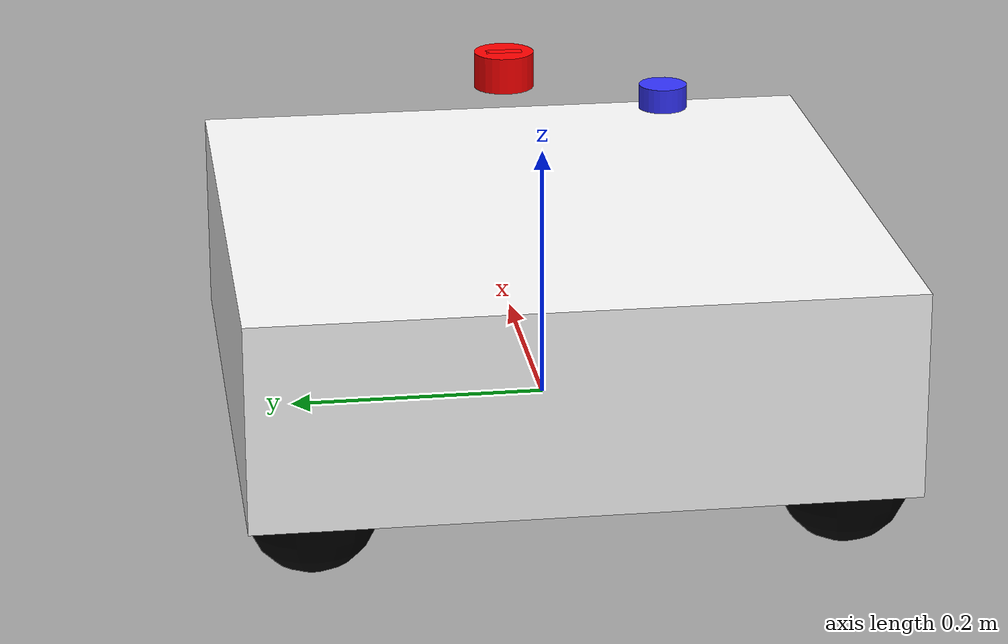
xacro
<?xml version="1.0"?>
<robot xmlns:xacro="http://www.ros.org/wiki/xacro"  name="actual_robot_rect_obj">
    <xacro:arg name="prefix" default="" />

    <xacro:include filename="actual_robot_rect_obj_core_corr.xacro"/>
    <xacro:include filename="actual_lidar_corr_rect_obj.xacro"/>
    <xacro:include filename="actual_camera_corr_rect_obj.xacro"/>
    <xacro:include filename="actual_depth_camera_corr_rect_obj.xacro"/>
    <xacro:include filename="actual_imu_corr_rect_obj.xacro"/>

    <xacro:rect_obj prefix=""/>
    <xacro:lidar_module prefix=""/>
    <xacro:camera_module prefix=""/>
    <xacro:depth_camera_module prefix=""/>
    <xacro:imu_module prefix=""/>
</robot>

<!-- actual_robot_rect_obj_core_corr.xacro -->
<robot xmlns:xacro="http://www.ros.org/wiki/xacro"  >

    <xacro:macro name="rect_obj" params="prefix">

    <xacro:include filename="inertial_macros.xacro"/>

    <material name="white">
        <color rgba="1 1 1 1" />
    </material>

    <material name="orange">
        <color rgba="1 0.3 0.1 1" />
    </material>

    <material name="blue">
        <color rgba="0.2 0.2 1 1" />
    </material>

    <material name="red">
        <color rgba="1 0 0 1" />
    </material>

    <material name="black">
        <color rgba="0 0 0 1" />
    </material>

    <!-- Base link:  center of rect at the bottom plane-->
    <link name="${prefix}base_link">

    </link>

    <!-- Base_Footprint Link-->

    <joint name="${prefix}base_footprint_joint" type="fixed">
        <parent link="${prefix}base_link" />
        <child link="${prefix}base_footprint" />
        <origin xyz= '0 0 0' rpy="0 0 0"/>
    </joint>
    <link name="${prefix}base_footprint">
    </link>

    <!-- chassi link: same as base link-->
    <joint name="${prefix}chassis_joint" type="fixed">
        <parent link="${prefix}base_link" />
        <child link="${prefix}chassis" />
        <origin xyz= '0 0 0'/>
    </joint>

    <link name="${prefix}chassis">
        <visual>
            <origin xyz="0 0 0.08" />
            <geometry>
                <box size="0.5 0.5 0.16"/>
            </geometry>
            <material name="white" />
        </visual>
        <collision>
            <origin xyz="0 0 0.08" />
            <geometry>
                <box size="0.5 0.5 0.16"/>
            </geometry>
        </collision>
        <xacro:inertial_box mass="1.0" x="0.5" y="0.5" z="0.16">
            <origin xyz="0 0 0.08" rpy="0 0 0"/>
        </xacro:inertial_box>
    </link>

    <gazebo reference="${prefix}chassis">
        <material>Gazebo/White</material>
    </gazebo>

    <!-- caster wheel link front right-->

    <joint name="${prefix}caster_wheel_joint_fr" type="fixed">
        <parent link="${prefix}chassis"/>
        <child link="${prefix}caster_wheel_fr"/>
        <origin xyz="0.2 -0.2 0"/>
    </joint>

    <link name="${prefix}caster_wheel_fr">
        <visual>
            <geometry>
                <sphere radius="0.05"/>
            </geometry>
            <material name="black"/>
        </visual>
        <collision>
            <geometry>
                <sphere radius="0.05"/>
            </geometry>
        </collision>
        <xacro:inertial_sphere mass="0.1" radius="0.05">
            <origin xyz="0 0 0" rpy="0 0 0"/>
        </xacro:inertial_sphere>
    </link>

    <gazebo reference="${prefix}caster_wheel_fr">
        <material>Gazebo/Black</material>
        <mu1 value="0.1"/>
        <mu2 value="0.1"/>

    </gazebo>

    <!-- caster wheel link front left-->

    <joint name="${prefix}caster_wheel_joint_fl" type="fixed">
        <parent link="${prefix}chassis"/>
        <child link="${prefix}caster_wheel_fl"/>
        <origin xyz="0.2 0.2 0"/>
    </joint>

    <link name="${prefix}caster_wheel_fl">
        <visual>
            <geometry>
                <sphere radius="0.05"/>
            </geometry>
            <material name="black"/>
        </visual>
        <collision>
            <geometry>
                <sphere radius="0.05"/>
            </geometry>
        </collision>
        <xacro:inertial_sphere mass="0.1" radius="0.05">
            <origin xyz="0 0 0" rpy="0 0 0"/>
        </xacro:inertial_sphere>
    </link>

    <gazebo reference="${prefix}caster_wheel_fl">
        <material>Gazebo/Black</material>
        <mu1 value="0.1"/>
        <mu2 value="0.1"/>

    </gazebo>

    <!-- caster wheel link back right-->

    <joint name="${prefix}caster_wheel_joint_br" type="fixed">
        <parent link="${prefix}chassis"/>
        <child link="${prefix}caster_wheel_br"/>
        <origin xyz="-0.2 -0.2 0"/>
    </joint>

    <link name="${prefix}caster_wheel_br">
        <visual>
            <geometry>
                <sphere radius="0.05"/>
            </geometry>
            <material name="black"/>
        </visual>
        <collision>
            <geometry>
                <sphere radius="0.05"/>
            </geometry>
        </collision>
        <xacro:inertial_sphere mass="0.1" radius="0.05">
            <origin xyz="0 0 0" rpy="0 0 0"/>
        </xacro:inertial_sphere>
    </link>

    <gazebo reference="${prefix}caster_wheel_br">
        <material>Gazebo/Black</material>
        <mu1 value="0.1"/>
        <mu2 value="0.1"/>

    </gazebo>

    <!-- caster wheel link back left-->

    <joint name="${prefix}caster_wheel_joint_bl" type="fixed">
        <parent link="${prefix}chassis"/>
        <child link="${prefix}caster_wheel_bl"/>
        <origin xyz="-0.2 0.2 0"/>
    </joint>

    <link name="${prefix}caster_wheel_bl">
        <visual>
            <geometry>
                <sphere radius="0.05"/>
            </geometry>
            <material name="black"/>
        </visual>
        <collision>
            <geometry>
                <sphere radius="0.05"/>
            </geometry>
        </collision>
        <xacro:inertial_sphere mass="0.1" radius="0.05">
            <origin xyz="0 0 0" rpy="0 0 0"/>
        </xacro:inertial_sphere>
    </link>

    <gazebo reference="${prefix}caster_wheel_bl">
        <material>Gazebo/Black</material>
        <mu1 value="0.1"/>
        <mu2 value="0.1"/>

    </gazebo>

    </xacro:macro>

</robot>

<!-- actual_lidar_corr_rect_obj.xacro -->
<robot xmlns:xacro="http://www.ros.org/wiki/xacro" >
    <xacro:macro name="lidar_module" params="prefix">
        <xacro:include filename="inertial_macros.xacro"/>

        <joint name="${prefix}laser_joint" type="fixed">
            <parent link="${prefix}chassis"/>
            <child link="${prefix}laser_frame"/>
            <origin xyz="0.23 0 0.20" rpy="0 0 0"/>
        </joint>

        <link name="${prefix}laser_frame">
            <visual>
                <geometry>
                    <cylinder radius="0.025" length='0.03'/>
                </geometry>
                <material name="red"/>
            </visual>
            <collision>
                <geometry>
                    <cylinder radius="0.025" length='0.03'/>
                </geometry>
            </collision>
            <xacro:inertial_cylinder mass="0.1" length="0.03" radius="0.025">
                <origin xyz="0 0 0" rpy="0 0 0"/>
            </xacro:inertial_cylinder>
        </link>

    </xacro:macro>

</robot>

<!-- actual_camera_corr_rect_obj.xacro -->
<robot xmlns:xacro="http://www.ros.org/wiki/xacro" >
    <xacro:macro name="camera_module" params="prefix">

        <joint name="${prefix}camera_joint" type="fixed">
            <parent link="${prefix}chassis"/>
            <child link="${prefix}camera_link"/>
            <origin xyz="0.23 0 0.20" rpy="0 0 0"/>
        </joint>

        <link name="${prefix}camera_link">
            <visual>
                <geometry>
                    <box size="0.010 0.03 0.03" />
                </geometry>
                <material name="red"/>
            </visual>
        </link>

        <joint name="${prefix}camera_optical_joint" type="fixed">
            <parent link="${prefix}camera_link"/>
            <child link="${prefix}camera_link_optical"/>
            <origin xyz="0.0 0.0 0.0" rpy="${-pi/2} 0 ${-pi/2}"/>
        </joint>

        <link name="${prefix}camera_link_optical">

        </link>

    </xacro:macro>

</robot>

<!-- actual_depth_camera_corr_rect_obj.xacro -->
<robot xmlns:xacro="http://www.ros.org/wiki/xacro" >
    <xacro:macro name="depth_camera_module" params="prefix">

        <joint name="${prefix}depth_camera_joint" type="fixed">
            <parent link="${prefix}chassis"/>
            <child link="${prefix}depth_camera_link"/>
            <origin xyz="0.23 0 0.20" rpy="0 0 0"/>
        </joint>

        <link name="${prefix}depth_camera_link">
            <visual>
                <geometry>
                    <box size="0.010 0.03 0.03" />
                </geometry>
                <material name="red"/>
            </visual>
        </link>

        <joint name="${prefix}depth_camera_optical_joint" type="fixed">
            <parent link="${prefix}depth_camera_link"/>
            <child link="${prefix}depth_camera_link_optical"/>
            <origin xyz="0.0 0.0 0.0" rpy="${-pi/2} 0 ${-pi/2}"/>
        </joint>

        <link name="${prefix}depth_camera_link_optical">

        </link>

    </xacro:macro>

</robot>

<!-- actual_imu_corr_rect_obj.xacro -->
<robot xmlns:xacro="http://www.ros.org/wiki/xacro" >

    <xacro:macro name="imu_module" params="prefix">

      <xacro:include filename="inertial_macros.xacro"/>

      <joint name="${prefix}imu_joint" type="fixed">
          <parent link="${prefix}base_link"/>
          <child link="${prefix}imu_link"/>
          <origin xyz="0.2 -0.13 0.18" rpy="0 0 0"/>
      </joint>

      <link name="${prefix}imu_link">
        <visual>
          <geometry>
            <cylinder radius='0.02' length='0.02'/>
            </geometry>
            <material name='blue'/>
        </visual>
        <collision>
          <geometry>
            <cylinder radius='0.02' length='0.02'/>
          </geometry>
        </collision>
      </link>

    </xacro:macro>

</robot>
